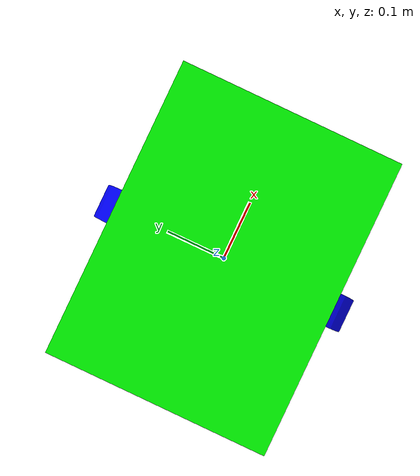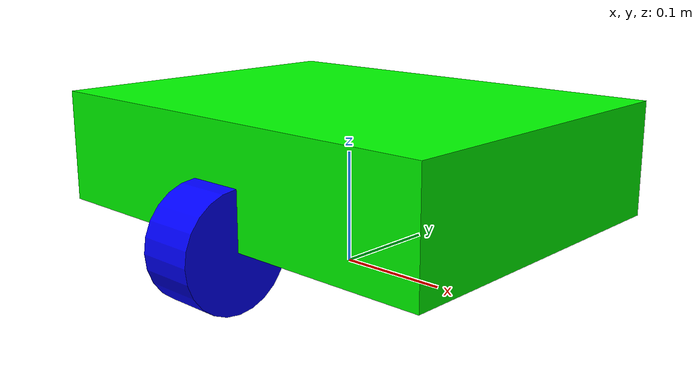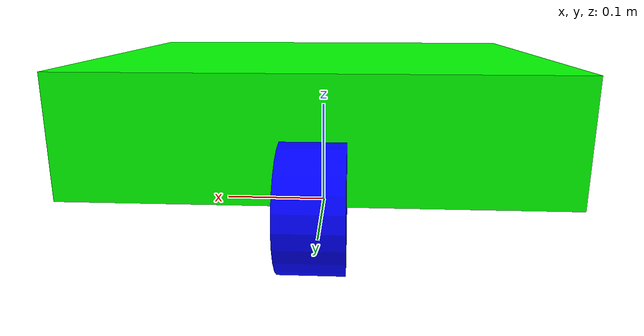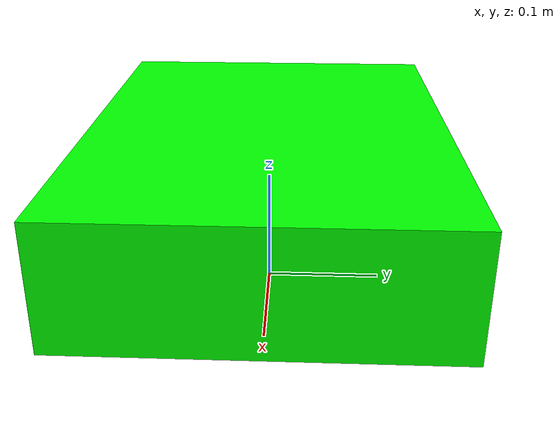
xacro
<?xml version="1.0"?>
<!-- CMP 438: Communicating Robots - Isaac D. Hoyos -->
<robot name="diffbot" xmlns:xacro="http://www.ros.org/wiki/xacro">

  <!-- ================= PARAMETERS ================= -->
  <xacro:property name="wheel_radius" value="0.05"/>
  <xacro:property name="wheel_width" value="0.05"/>
  <xacro:property name="wheel_sep" value="0.30"/>
  <xacro:property name="half_wheel_sep" value="${wheel_sep * 0.5}"/>

  <!-- ================= BASE BODY ================= -->
  <link name="base_link"/>
  <link name="base_body">
    <visual>
      <geometry>
        <box size="0.4 0.3 0.1"/>
      </geometry>
      <material name="green">
        <color rgba="0 1 0 1"/>
      </material>
    </visual>

    <collision>
      <geometry>
        <box size="0.4 0.3 0.1"/>
      </geometry>
    </collision>

    <inertial>
      <mass value="5.0"/>
      <inertia
        ixx="0.1" iyy="0.1" izz="0.1"
        ixy="0.0" ixz="0.0" iyz="0.0"/>
    </inertial>
  </link>

  <joint name="base_body_joint" type="fixed">
    <parent link="base_link"/>
    <child link="base_body"/>
    <origin xyz="0 0 0.10" rpy="0 0 0"/>
  </joint>

  <!-- ================= LEFT WHEEL ================= -->
  <link name="left_wheel">
    <visual>
      <geometry>
        <cylinder radius="${wheel_radius}" length="${wheel_width}"/>
      </geometry>
      <material name="blue">
        <color rgba="0 0 1 1"/>
      </material>
    </visual>

    <collision>
      <geometry>
        <cylinder radius="${wheel_radius}" length="${wheel_width}"/>
      </geometry>
    </collision>

    <inertial>
      <mass value="1.0"/>
      <inertia
        ixx="0.01" iyy="0.01" izz="0.01"
        ixy="0.0" ixz="0.0" iyz="0.0"/>
    </inertial>
  </link>

  <!-- ================= RIGHT WHEEL ================= -->
  <link name="right_wheel">
    <visual>
      <geometry>
        <cylinder radius="${wheel_radius}" length="${wheel_width}"/>
      </geometry>
      <material name="blue">
        <color rgba="0 0 1 1"/>
      </material>
    </visual>

    <collision>
      <geometry>
        <cylinder radius="${wheel_radius}" length="${wheel_width}"/>
      </geometry>
    </collision>

    <inertial>
      <mass value="1.0"/>
      <inertia
        ixx="0.01" iyy="0.01" izz="0.01"
        ixy="0.0" ixz="0.0" iyz="0.0"/>
    </inertial>
  </link>

  <!-- ================= WHEEL JOINTS ================= -->
  <joint name="left_wheel_joint" type="continuous">
    <parent link="base_link"/>
    <child link="left_wheel"/>
    <origin xyz="0 ${half_wheel_sep} 0.05" rpy="0 1.5707 0"/>
    <axis xyz="0 1 0"/>
  </joint>

  <joint name="right_wheel_joint" type="continuous">
    <parent link="base_link"/>
    <child link="right_wheel"/>
    <origin xyz="0 -${half_wheel_sep} 0.05" rpy="0 1.5707 0"/>
    <axis xyz="0 1 0"/>
  </joint>

  <!-- ================= GAZEBO DIFF DRIVE ================= -->
  <gazebo>
    <plugin
      filename="/opt/ros/kilted/lib/libros_gz_sim_diff_drive_system.so"
      name="ros_gz_diff_drive">

      <left_joint>left_wheel_joint</left_joint>
      <right_joint>right_wheel_joint</right_joint>
      <wheel_separation>${wheel_sep}</wheel_separation>
      <wheel_radius>${wheel_radius}</wheel_radius>

      <command_topic>cmd_vel</command_topic>
      <odom_topic>odom</odom_topic>
      <odometry_frame>odom</odometry_frame>
      <robot_base_frame>base_link</robot_base_frame>

      <publish_odom>true</publish_odom>
      <publish_tf>true</publish_tf>

    </plugin>
  </gazebo>

</robot>
